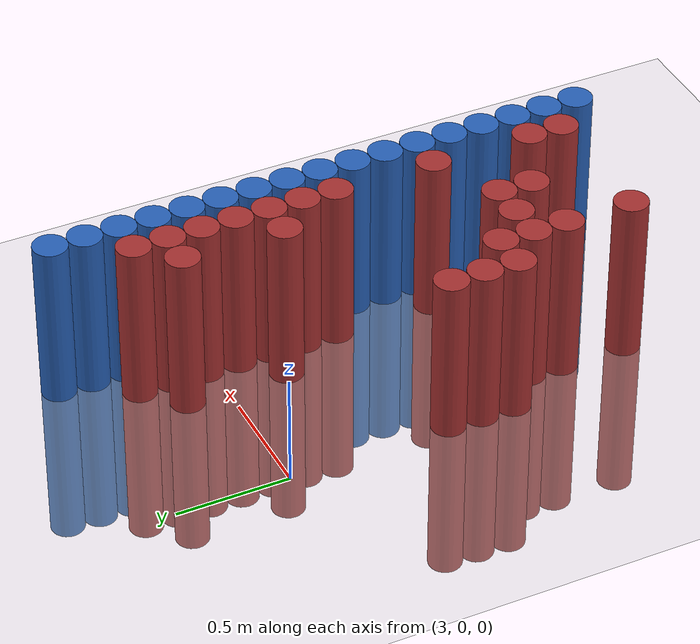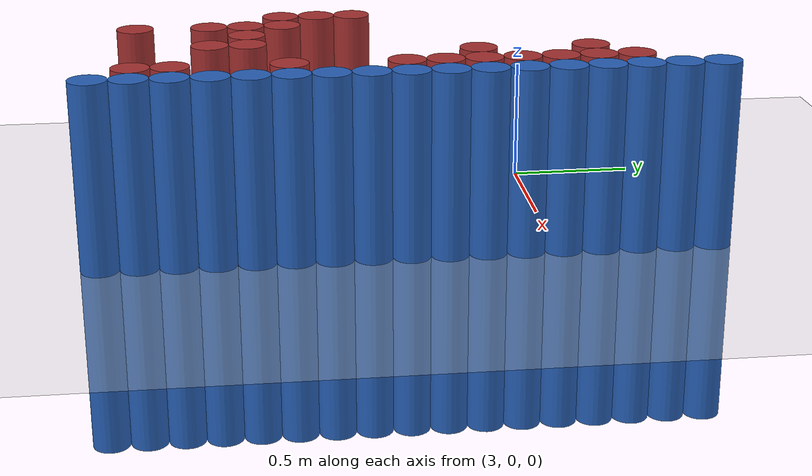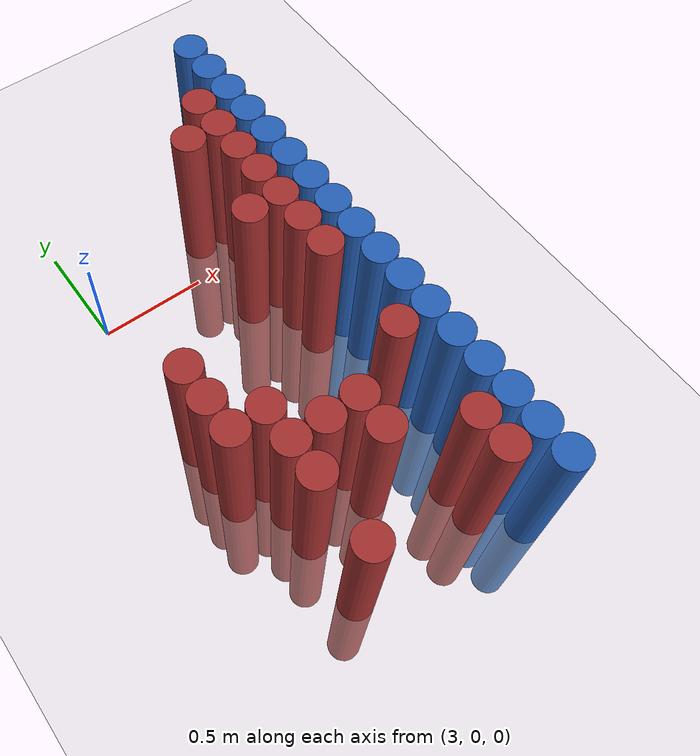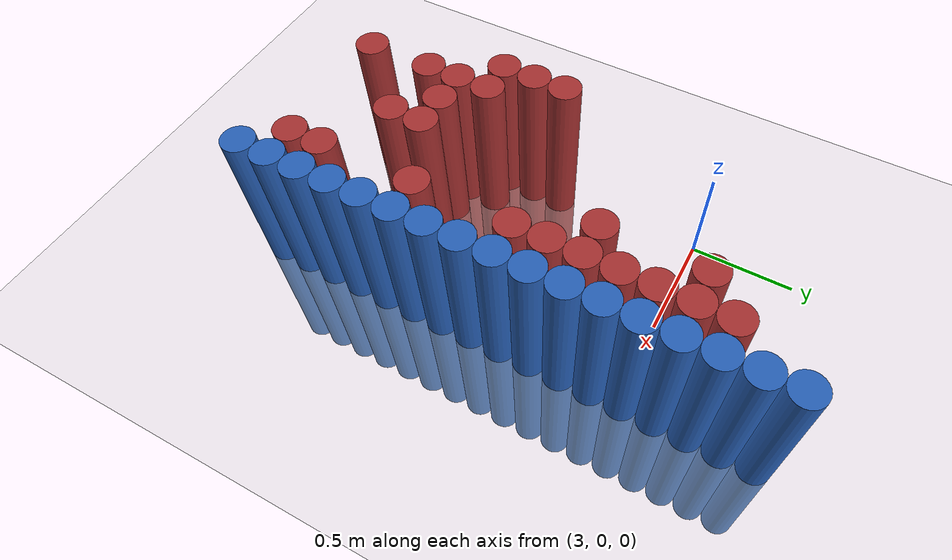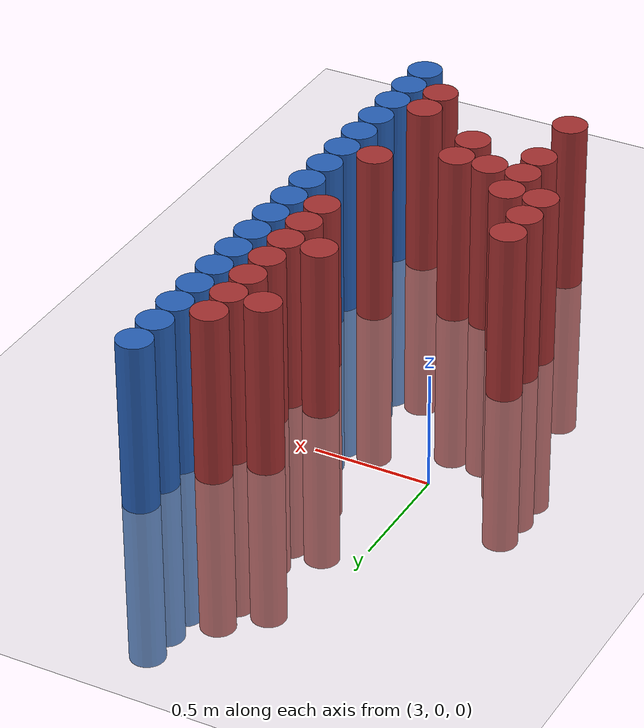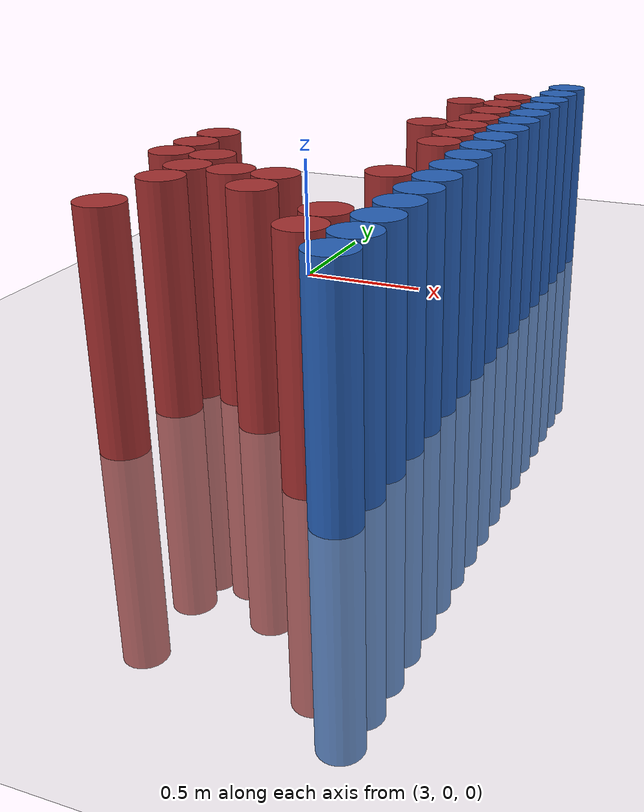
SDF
<sdf version="1.6">
 <world name="default">
  <model name="ground_plane">
   <static>1</static>
   <link name="link">
    <collision name="collision">
     <geometry><plane><normal>0 0 1</normal><size>100 100</size></plane></geometry>
     <surface><friction><ode><mu>100</mu><mu2>50</mu2></ode></friction></surface>
    </collision>
    <visual name="visual">
     <cast_shadows>0</cast_shadows>
     <geometry><plane><normal>0 0 1</normal><size>100 100</size></plane></geometry>
     <material>
      <script><uri>file://media/materials/scripts/gazebo.material</uri><name>Gazebo/Grey</name></script>
     </material>
    </visual>
   </link>
  </model>
  <model name="unit_cylinder_92">
   <static>1</static>
   <pose>3.925000 -1.625000 0.000000 0.000000 0.000000 0.000000</pose>
   <link name="link">
    <inertial>
     <mass>1</mass>
     <inertia><ixx>0.145833</ixx><ixy>0</ixy><ixz>0</ixz><iyy>0.145833</iyy><iyz>0</iyz><izz>0.125</izz></inertia>
    </inertial>
    <collision name="collision">
     <geometry><cylinder><radius>0.075000</radius><length>1.5</length></cylinder></geometry>
    </collision>
    <visual name="visual">
     <geometry><cylinder><radius>0.075000</radius><length>1.5</length></cylinder></geometry>
     <material>
      <ambient>0.152000 0.379000 0.720000 1</ambient>
      <diffuse>0.152000 0.379000 0.720000 1</diffuse>
     </material>
     <material>
      <script><name>Gazebo/Grey</name><uri>file://media/materials/scripts/gazebo.material</uri></script>
     </material>
    </visual>
   </link>
  </model>
  <model name="unit_cylinder_94">
   <static>1</static>
   <pose>3.925000 -1.475000 0.000000 0.000000 0.000000 0.000000</pose>
   <link name="link">
    <inertial>
     <mass>1</mass>
     <inertia><ixx>0.145833</ixx><ixy>0</ixy><ixz>0</ixz><iyy>0.145833</iyy><iyz>0</iyz><izz>0.125</izz></inertia>
    </inertial>
    <collision name="collision">
     <geometry><cylinder><radius>0.075000</radius><length>1.5</length></cylinder></geometry>
    </collision>
    <visual name="visual">
     <geometry><cylinder><radius>0.075000</radius><length>1.5</length></cylinder></geometry>
     <material>
      <ambient>0.152000 0.379000 0.720000 1</ambient>
      <diffuse>0.152000 0.379000 0.720000 1</diffuse>
     </material>
     <material>
      <script><name>Gazebo/Grey</name><uri>file://media/materials/scripts/gazebo.material</uri></script>
     </material>
    </visual>
   </link>
  </model>
  <model name="unit_cylinder_96">
   <static>1</static>
   <pose>3.925000 -1.325000 0.000000 0.000000 0.000000 0.000000</pose>
   <link name="link">
    <inertial>
     <mass>1</mass>
     <inertia><ixx>0.145833</ixx><ixy>0</ixy><ixz>0</ixz><iyy>0.145833</iyy><iyz>0</iyz><izz>0.125</izz></inertia>
    </inertial>
    <collision name="collision">
     <geometry><cylinder><radius>0.075000</radius><length>1.5</length></cylinder></geometry>
    </collision>
    <visual name="visual">
     <geometry><cylinder><radius>0.075000</radius><length>1.5</length></cylinder></geometry>
     <material>
      <ambient>0.152000 0.379000 0.720000 1</ambient>
      <diffuse>0.152000 0.379000 0.720000 1</diffuse>
     </material>
     <material>
      <script><name>Gazebo/Grey</name><uri>file://media/materials/scripts/gazebo.material</uri></script>
     </material>
    </visual>
   </link>
  </model>
  <model name="unit_cylinder_98">
   <static>1</static>
   <pose>3.925000 -1.175000 0.000000 0.000000 0.000000 0.000000</pose>
   <link name="link">
    <inertial>
     <mass>1</mass>
     <inertia><ixx>0.145833</ixx><ixy>0</ixy><ixz>0</ixz><iyy>0.145833</iyy><iyz>0</iyz><izz>0.125</izz></inertia>
    </inertial>
    <collision name="collision">
     <geometry><cylinder><radius>0.075000</radius><length>1.5</length></cylinder></geometry>
    </collision>
    <visual name="visual">
     <geometry><cylinder><radius>0.075000</radius><length>1.5</length></cylinder></geometry>
     <material>
      <ambient>0.152000 0.379000 0.720000 1</ambient>
      <diffuse>0.152000 0.379000 0.720000 1</diffuse>
     </material>
     <material>
      <script><name>Gazebo/Grey</name><uri>file://media/materials/scripts/gazebo.material</uri></script>
     </material>
    </visual>
   </link>
  </model>
  <model name="unit_cylinder_100">
   <static>1</static>
   <pose>3.925000 -1.025000 0.000000 0.000000 0.000000 0.000000</pose>
   <link name="link">
    <inertial>
     <mass>1</mass>
     <inertia><ixx>0.145833</ixx><ixy>0</ixy><ixz>0</ixz><iyy>0.145833</iyy><iyz>0</iyz><izz>0.125</izz></inertia>
    </inertial>
    <collision name="collision">
     <geometry><cylinder><radius>0.075000</radius><length>1.5</length></cylinder></geometry>
    </collision>
    <visual name="visual">
     <geometry><cylinder><radius>0.075000</radius><length>1.5</length></cylinder></geometry>
     <material>
      <ambient>0.152000 0.379000 0.720000 1</ambient>
      <diffuse>0.152000 0.379000 0.720000 1</diffuse>
     </material>
     <material>
      <script><name>Gazebo/Grey</name><uri>file://media/materials/scripts/gazebo.material</uri></script>
     </material>
    </visual>
   </link>
  </model>
  <model name="unit_cylinder_102">
   <static>1</static>
   <pose>3.925000 -0.875000 0.000000 0.000000 0.000000 0.000000</pose>
   <link name="link">
    <inertial>
     <mass>1</mass>
     <inertia><ixx>0.145833</ixx><ixy>0</ixy><ixz>0</ixz><iyy>0.145833</iyy><iyz>0</iyz><izz>0.125</izz></inertia>
    </inertial>
    <collision name="collision">
     <geometry><cylinder><radius>0.075000</radius><length>1.5</length></cylinder></geometry>
    </collision>
    <visual name="visual">
     <geometry><cylinder><radius>0.075000</radius><length>1.5</length></cylinder></geometry>
     <material>
      <ambient>0.152000 0.379000 0.720000 1</ambient>
      <diffuse>0.152000 0.379000 0.720000 1</diffuse>
     </material>
     <material>
      <script><name>Gazebo/Grey</name><uri>file://media/materials/scripts/gazebo.material</uri></script>
     </material>
    </visual>
   </link>
  </model>
  <model name="unit_cylinder_104">
   <static>1</static>
   <pose>3.925000 -0.725000 0.000000 0.000000 0.000000 0.000000</pose>
   <link name="link">
    <inertial>
     <mass>1</mass>
     <inertia><ixx>0.145833</ixx><ixy>0</ixy><ixz>0</ixz><iyy>0.145833</iyy><iyz>0</iyz><izz>0.125</izz></inertia>
    </inertial>
    <collision name="collision">
     <geometry><cylinder><radius>0.075000</radius><length>1.5</length></cylinder></geometry>
    </collision>
    <visual name="visual">
     <geometry><cylinder><radius>0.075000</radius><length>1.5</length></cylinder></geometry>
     <material>
      <ambient>0.152000 0.379000 0.720000 1</ambient>
      <diffuse>0.152000 0.379000 0.720000 1</diffuse>
     </material>
     <material>
      <script><name>Gazebo/Grey</name><uri>file://media/materials/scripts/gazebo.material</uri></script>
     </material>
    </visual>
   </link>
  </model>
  <model name="unit_cylinder_106">
   <static>1</static>
   <pose>3.925000 -0.575000 0.000000 0.000000 0.000000 0.000000</pose>
   <link name="link">
    <inertial>
     <mass>1</mass>
     <inertia><ixx>0.145833</ixx><ixy>0</ixy><ixz>0</ixz><iyy>0.145833</iyy><iyz>0</iyz><izz>0.125</izz></inertia>
    </inertial>
    <collision name="collision">
     <geometry><cylinder><radius>0.075000</radius><length>1.5</length></cylinder></geometry>
    </collision>
    <visual name="visual">
     <geometry><cylinder><radius>0.075000</radius><length>1.5</length></cylinder></geometry>
     <material>
      <ambient>0.152000 0.379000 0.720000 1</ambient>
      <diffuse>0.152000 0.379000 0.720000 1</diffuse>
     </material>
     <material>
      <script><name>Gazebo/Grey</name><uri>file://media/materials/scripts/gazebo.material</uri></script>
     </material>
    </visual>
   </link>
  </model>
  <model name="unit_cylinder_108">
   <static>1</static>
   <pose>3.925000 -0.425000 0.000000 0.000000 0.000000 0.000000</pose>
   <link name="link">
    <inertial>
     <mass>1</mass>
     <inertia><ixx>0.145833</ixx><ixy>0</ixy><ixz>0</ixz><iyy>0.145833</iyy><iyz>0</iyz><izz>0.125</izz></inertia>
    </inertial>
    <collision name="collision">
     <geometry><cylinder><radius>0.075000</radius><length>1.5</length></cylinder></geometry>
    </collision>
    <visual name="visual">
     <geometry><cylinder><radius>0.075000</radius><length>1.5</length></cylinder></geometry>
     <material>
      <ambient>0.152000 0.379000 0.720000 1</ambient>
      <diffuse>0.152000 0.379000 0.720000 1</diffuse>
     </material>
     <material>
      <script><name>Gazebo/Grey</name><uri>file://media/materials/scripts/gazebo.material</uri></script>
     </material>
    </visual>
   </link>
  </model>
  <model name="unit_cylinder_110">
   <static>1</static>
   <pose>3.925000 -0.275000 0.000000 0.000000 0.000000 0.000000</pose>
   <link name="link">
    <inertial>
     <mass>1</mass>
     <inertia><ixx>0.145833</ixx><ixy>0</ixy><ixz>0</ixz><iyy>0.145833</iyy><iyz>0</iyz><izz>0.125</izz></inertia>
    </inertial>
    <collision name="collision">
     <geometry><cylinder><radius>0.075000</radius><length>1.5</length></cylinder></geometry>
    </collision>
    <visual name="visual">
     <geometry><cylinder><radius>0.075000</radius><length>1.5</length></cylinder></geometry>
     <material>
      <ambient>0.152000 0.379000 0.720000 1</ambient>
      <diffuse>0.152000 0.379000 0.720000 1</diffuse>
     </material>
     <material>
      <script><name>Gazebo/Grey</name><uri>file://media/materials/scripts/gazebo.material</uri></script>
     </material>
    </visual>
   </link>
  </model>
  <model name="unit_cylinder_112">
   <static>1</static>
   <pose>3.925000 -0.125000 0.000000 0.000000 0.000000 0.000000</pose>
   <link name="link">
    <inertial>
     <mass>1</mass>
     <inertia><ixx>0.145833</ixx><ixy>0</ixy><ixz>0</ixz><iyy>0.145833</iyy><iyz>0</iyz><izz>0.125</izz></inertia>
    </inertial>
    <collision name="collision">
     <geometry><cylinder><radius>0.075000</radius><length>1.5</length></cylinder></geometry>
    </collision>
    <visual name="visual">
     <geometry><cylinder><radius>0.075000</radius><length>1.5</length></cylinder></geometry>
     <material>
      <ambient>0.152000 0.379000 0.720000 1</ambient>
      <diffuse>0.152000 0.379000 0.720000 1</diffuse>
     </material>
     <material>
      <script><name>Gazebo/Grey</name><uri>file://media/materials/scripts/gazebo.material</uri></script>
     </material>
    </visual>
   </link>
  </model>
  <model name="unit_cylinder_114">
   <static>1</static>
   <pose>3.925000 0.025000 0.000000 0.000000 0.000000 0.000000</pose>
   <link name="link">
    <inertial>
     <mass>1</mass>
     <inertia><ixx>0.145833</ixx><ixy>0</ixy><ixz>0</ixz><iyy>0.145833</iyy><iyz>0</iyz><izz>0.125</izz></inertia>
    </inertial>
    <collision name="collision">
     <geometry><cylinder><radius>0.075000</radius><length>1.5</length></cylinder></geometry>
    </collision>
    <visual name="visual">
     <geometry><cylinder><radius>0.075000</radius><length>1.5</length></cylinder></geometry>
     <material>
      <ambient>0.152000 0.379000 0.720000 1</ambient>
      <diffuse>0.152000 0.379000 0.720000 1</diffuse>
     </material>
     <material>
      <script><name>Gazebo/Grey</name><uri>file://media/materials/scripts/gazebo.material</uri></script>
     </material>
    </visual>
   </link>
  </model>
  <model name="unit_cylinder_116">
   <static>1</static>
   <pose>3.925000 0.175000 0.000000 0.000000 0.000000 0.000000</pose>
   <link name="link">
    <inertial>
     <mass>1</mass>
     <inertia><ixx>0.145833</ixx><ixy>0</ixy><ixz>0</ixz><iyy>0.145833</iyy><iyz>0</iyz><izz>0.125</izz></inertia>
    </inertial>
    <collision name="collision">
     <geometry><cylinder><radius>0.075000</radius><length>1.5</length></cylinder></geometry>
    </collision>
    <visual name="visual">
     <geometry><cylinder><radius>0.075000</radius><length>1.5</length></cylinder></geometry>
     <material>
      <ambient>0.152000 0.379000 0.720000 1</ambient>
      <diffuse>0.152000 0.379000 0.720000 1</diffuse>
     </material>
     <material>
      <script><name>Gazebo/Grey</name><uri>file://media/materials/scripts/gazebo.material</uri></script>
     </material>
    </visual>
   </link>
  </model>
  <model name="unit_cylinder_118">
   <static>1</static>
   <pose>3.925000 0.325000 0.000000 0.000000 0.000000 0.000000</pose>
   <link name="link">
    <inertial>
     <mass>1</mass>
     <inertia><ixx>0.145833</ixx><ixy>0</ixy><ixz>0</ixz><iyy>0.145833</iyy><iyz>0</iyz><izz>0.125</izz></inertia>
    </inertial>
    <collision name="collision">
     <geometry><cylinder><radius>0.075000</radius><length>1.5</length></cylinder></geometry>
    </collision>
    <visual name="visual">
     <geometry><cylinder><radius>0.075000</radius><length>1.5</length></cylinder></geometry>
     <material>
      <ambient>0.152000 0.379000 0.720000 1</ambient>
      <diffuse>0.152000 0.379000 0.720000 1</diffuse>
     </material>
     <material>
      <script><name>Gazebo/Grey</name><uri>file://media/materials/scripts/gazebo.material</uri></script>
     </material>
    </visual>
   </link>
  </model>
  <model name="unit_cylinder_120">
   <static>1</static>
   <pose>3.925000 0.475000 0.000000 0.000000 0.000000 0.000000</pose>
   <link name="link">
    <inertial>
     <mass>1</mass>
     <inertia><ixx>0.145833</ixx><ixy>0</ixy><ixz>0</ixz><iyy>0.145833</iyy><iyz>0</iyz><izz>0.125</izz></inertia>
    </inertial>
    <collision name="collision">
     <geometry><cylinder><radius>0.075000</radius><length>1.5</length></cylinder></geometry>
    </collision>
    <visual name="visual">
     <geometry><cylinder><radius>0.075000</radius><length>1.5</length></cylinder></geometry>
     <material>
      <ambient>0.152000 0.379000 0.720000 1</ambient>
      <diffuse>0.152000 0.379000 0.720000 1</diffuse>
     </material>
     <material>
      <script><name>Gazebo/Grey</name><uri>file://media/materials/scripts/gazebo.material</uri></script>
     </material>
    </visual>
   </link>
  </model>
  <model name="unit_cylinder_122">
   <static>1</static>
   <pose>3.925000 0.625000 0.000000 0.000000 0.000000 0.000000</pose>
   <link name="link">
    <inertial>
     <mass>1</mass>
     <inertia><ixx>0.145833</ixx><ixy>0</ixy><ixz>0</ixz><iyy>0.145833</iyy><iyz>0</iyz><izz>0.125</izz></inertia>
    </inertial>
    <collision name="collision">
     <geometry><cylinder><radius>0.075000</radius><length>1.5</length></cylinder></geometry>
    </collision>
    <visual name="visual">
     <geometry><cylinder><radius>0.075000</radius><length>1.5</length></cylinder></geometry>
     <material>
      <ambient>0.152000 0.379000 0.720000 1</ambient>
      <diffuse>0.152000 0.379000 0.720000 1</diffuse>
     </material>
     <material>
      <script><name>Gazebo/Grey</name><uri>file://media/materials/scripts/gazebo.material</uri></script>
     </material>
    </visual>
   </link>
  </model>
  <model name="unit_cylinder_533">
   <static>1</static>
   <pose>3.025000 -1.025000 0.000000 0.000000 0.000000 0.000000</pose>
   <link name="link">
    <inertial>
     <mass>1</mass>
     <inertia><ixx>0.145833</ixx><ixy>0</ixy><ixz>0</ixz><iyy>0.145833</iyy><iyz>0</iyz><izz>0.125</izz></inertia>
    </inertial>
    <collision name="collision">
     <geometry><cylinder><radius>0.075000</radius><length>1.5</length></cylinder></geometry>
    </collision>
    <visual name="visual">
     <geometry><cylinder><radius>0.075000</radius><length>1.5</length></cylinder></geometry>
     <material>
      <ambient>0.648000 0.192000 0.192000 1</ambient>
      <diffuse>0.648000 0.192000 0.192000 1</diffuse>
     </material>
     <material>
      <script><name>Gazebo/Grey</name><uri>file://media/materials/scripts/gazebo.material</uri></script>
     </material>
    </visual>
   </link>
  </model>
  <model name="unit_cylinder_534">
   <static>1</static>
   <pose>3.025000 -0.875000 0.000000 0.000000 0.000000 0.000000</pose>
   <link name="link">
    <inertial>
     <mass>1</mass>
     <inertia><ixx>0.145833</ixx><ixy>0</ixy><ixz>0</ixz><iyy>0.145833</iyy><iyz>0</iyz><izz>0.125</izz></inertia>
    </inertial>
    <collision name="collision">
     <geometry><cylinder><radius>0.075000</radius><length>1.5</length></cylinder></geometry>
    </collision>
    <visual name="visual">
     <geometry><cylinder><radius>0.075000</radius><length>1.5</length></cylinder></geometry>
     <material>
      <ambient>0.648000 0.192000 0.192000 1</ambient>
      <diffuse>0.648000 0.192000 0.192000 1</diffuse>
     </material>
     <material>
      <script><name>Gazebo/Grey</name><uri>file://media/materials/scripts/gazebo.material</uri></script>
     </material>
    </visual>
   </link>
  </model>
  <model name="unit_cylinder_535">
   <static>1</static>
   <pose>3.025000 -0.725000 0.000000 0.000000 0.000000 0.000000</pose>
   <link name="link">
    <inertial>
     <mass>1</mass>
     <inertia><ixx>0.145833</ixx><ixy>0</ixy><ixz>0</ixz><iyy>0.145833</iyy><iyz>0</iyz><izz>0.125</izz></inertia>
    </inertial>
    <collision name="collision">
     <geometry><cylinder><radius>0.075000</radius><length>1.5</length></cylinder></geometry>
    </collision>
    <visual name="visual">
     <geometry><cylinder><radius>0.075000</radius><length>1.5</length></cylinder></geometry>
     <material>
      <ambient>0.648000 0.192000 0.192000 1</ambient>
      <diffuse>0.648000 0.192000 0.192000 1</diffuse>
     </material>
     <material>
      <script><name>Gazebo/Grey</name><uri>file://media/materials/scripts/gazebo.material</uri></script>
     </material>
    </visual>
   </link>
  </model>
  <model name="unit_cylinder_538">
   <static>1</static>
   <pose>3.175000 -1.625000 0.000000 0.000000 0.000000 0.000000</pose>
   <link name="link">
    <inertial>
     <mass>1</mass>
     <inertia><ixx>0.145833</ixx><ixy>0</ixy><ixz>0</ixz><iyy>0.145833</iyy><iyz>0</iyz><izz>0.125</izz></inertia>
    </inertial>
    <collision name="collision">
     <geometry><cylinder><radius>0.075000</radius><length>1.5</length></cylinder></geometry>
    </collision>
    <visual name="visual">
     <geometry><cylinder><radius>0.075000</radius><length>1.5</length></cylinder></geometry>
     <material>
      <ambient>0.648000 0.192000 0.192000 1</ambient>
      <diffuse>0.648000 0.192000 0.192000 1</diffuse>
     </material>
     <material>
      <script><name>Gazebo/Grey</name><uri>file://media/materials/scripts/gazebo.material</uri></script>
     </material>
    </visual>
   </link>
  </model>
  <model name="unit_cylinder_539">
   <static>1</static>
   <pose>3.175000 -1.325000 0.000000 0.000000 0.000000 0.000000</pose>
   <link name="link">
    <inertial>
     <mass>1</mass>
     <inertia><ixx>0.145833</ixx><ixy>0</ixy><ixz>0</ixz><iyy>0.145833</iyy><iyz>0</iyz><izz>0.125</izz></inertia>
    </inertial>
    <collision name="collision">
     <geometry><cylinder><radius>0.075000</radius><length>1.5</length></cylinder></geometry>
    </collision>
    <visual name="visual">
     <geometry><cylinder><radius>0.075000</radius><length>1.5</length></cylinder></geometry>
     <material>
      <ambient>0.648000 0.192000 0.192000 1</ambient>
      <diffuse>0.648000 0.192000 0.192000 1</diffuse>
     </material>
     <material>
      <script><name>Gazebo/Grey</name><uri>file://media/materials/scripts/gazebo.material</uri></script>
     </material>
    </visual>
   </link>
  </model>
  <model name="unit_cylinder_540">
   <static>1</static>
   <pose>3.175000 -1.175000 0.000000 0.000000 0.000000 0.000000</pose>
   <link name="link">
    <inertial>
     <mass>1</mass>
     <inertia><ixx>0.145833</ixx><ixy>0</ixy><ixz>0</ixz><iyy>0.145833</iyy><iyz>0</iyz><izz>0.125</izz></inertia>
    </inertial>
    <collision name="collision">
     <geometry><cylinder><radius>0.075000</radius><length>1.5</length></cylinder></geometry>
    </collision>
    <visual name="visual">
     <geometry><cylinder><radius>0.075000</radius><length>1.5</length></cylinder></geometry>
     <material>
      <ambient>0.648000 0.192000 0.192000 1</ambient>
      <diffuse>0.648000 0.192000 0.192000 1</diffuse>
     </material>
     <material>
      <script><name>Gazebo/Grey</name><uri>file://media/materials/scripts/gazebo.material</uri></script>
     </material>
    </visual>
   </link>
  </model>
  <model name="unit_cylinder_541">
   <static>1</static>
   <pose>3.175000 -1.025000 0.000000 0.000000 0.000000 0.000000</pose>
   <link name="link">
    <inertial>
     <mass>1</mass>
     <inertia><ixx>0.145833</ixx><ixy>0</ixy><ixz>0</ixz><iyy>0.145833</iyy><iyz>0</iyz><izz>0.125</izz></inertia>
    </inertial>
    <collision name="collision">
     <geometry><cylinder><radius>0.075000</radius><length>1.5</length></cylinder></geometry>
    </collision>
    <visual name="visual">
     <geometry><cylinder><radius>0.075000</radius><length>1.5</length></cylinder></geometry>
     <material>
      <ambient>0.648000 0.192000 0.192000 1</ambient>
      <diffuse>0.648000 0.192000 0.192000 1</diffuse>
     </material>
     <material>
      <script><name>Gazebo/Grey</name><uri>file://media/materials/scripts/gazebo.material</uri></script>
     </material>
    </visual>
   </link>
  </model>
  <model name="unit_cylinder_542">
   <static>1</static>
   <pose>3.325000 -1.175000 0.000000 0.000000 0.000000 0.000000</pose>
   <link name="link">
    <inertial>
     <mass>1</mass>
     <inertia><ixx>0.145833</ixx><ixy>0</ixy><ixz>0</ixz><iyy>0.145833</iyy><iyz>0</iyz><izz>0.125</izz></inertia>
    </inertial>
    <collision name="collision">
     <geometry><cylinder><radius>0.075000</radius><length>1.5</length></cylinder></geometry>
    </collision>
    <visual name="visual">
     <geometry><cylinder><radius>0.075000</radius><length>1.5</length></cylinder></geometry>
     <material>
      <ambient>0.648000 0.192000 0.192000 1</ambient>
      <diffuse>0.648000 0.192000 0.192000 1</diffuse>
     </material>
     <material>
      <script><name>Gazebo/Grey</name><uri>file://media/materials/scripts/gazebo.material</uri></script>
     </material>
    </visual>
   </link>
  </model>
  <model name="unit_cylinder_543">
   <static>1</static>
   <pose>3.475000 -1.325000 0.000000 0.000000 0.000000 0.000000</pose>
   <link name="link">
    <inertial>
     <mass>1</mass>
     <inertia><ixx>0.145833</ixx><ixy>0</ixy><ixz>0</ixz><iyy>0.145833</iyy><iyz>0</iyz><izz>0.125</izz></inertia>
    </inertial>
    <collision name="collision">
     <geometry><cylinder><radius>0.075000</radius><length>1.5</length></cylinder></geometry>
    </collision>
    <visual name="visual">
     <geometry><cylinder><radius>0.075000</radius><length>1.5</length></cylinder></geometry>
     <material>
      <ambient>0.648000 0.192000 0.192000 1</ambient>
      <diffuse>0.648000 0.192000 0.192000 1</diffuse>
     </material>
     <material>
      <script><name>Gazebo/Grey</name><uri>file://media/materials/scripts/gazebo.material</uri></script>
     </material>
    </visual>
   </link>
  </model>
  <model name="unit_cylinder_544">
   <static>1</static>
   <pose>3.475000 -1.175000 0.000000 0.000000 0.000000 0.000000</pose>
   <link name="link">
    <inertial>
     <mass>1</mass>
     <inertia><ixx>0.145833</ixx><ixy>0</ixy><ixz>0</ixz><iyy>0.145833</iyy><iyz>0</iyz><izz>0.125</izz></inertia>
    </inertial>
    <collision name="collision">
     <geometry><cylinder><radius>0.075000</radius><length>1.5</length></cylinder></geometry>
    </collision>
    <visual name="visual">
     <geometry><cylinder><radius>0.075000</radius><length>1.5</length></cylinder></geometry>
     <material>
      <ambient>0.648000 0.192000 0.192000 1</ambient>
      <diffuse>0.648000 0.192000 0.192000 1</diffuse>
     </material>
     <material>
      <script><name>Gazebo/Grey</name><uri>file://media/materials/scripts/gazebo.material</uri></script>
     </material>
    </visual>
   </link>
  </model>
  <model name="unit_cylinder_549">
   <static>1</static>
   <pose>3.625000 -0.275000 0.000000 0.000000 0.000000 0.000000</pose>
   <link name="link">
    <inertial>
     <mass>1</mass>
     <inertia><ixx>0.145833</ixx><ixy>0</ixy><ixz>0</ixz><iyy>0.145833</iyy><iyz>0</iyz><izz>0.125</izz></inertia>
    </inertial>
    <collision name="collision">
     <geometry><cylinder><radius>0.075000</radius><length>1.5</length></cylinder></geometry>
    </collision>
    <visual name="visual">
     <geometry><cylinder><radius>0.075000</radius><length>1.5</length></cylinder></geometry>
     <material>
      <ambient>0.648000 0.192000 0.192000 1</ambient>
      <diffuse>0.648000 0.192000 0.192000 1</diffuse>
     </material>
     <material>
      <script><name>Gazebo/Grey</name><uri>file://media/materials/scripts/gazebo.material</uri></script>
     </material>
    </visual>
   </link>
  </model>
  <model name="unit_cylinder_550">
   <static>1</static>
   <pose>3.625000 0.175000 0.000000 0.000000 0.000000 0.000000</pose>
   <link name="link">
    <inertial>
     <mass>1</mass>
     <inertia><ixx>0.145833</ixx><ixy>0</ixy><ixz>0</ixz><iyy>0.145833</iyy><iyz>0</iyz><izz>0.125</izz></inertia>
    </inertial>
    <collision name="collision">
     <geometry><cylinder><radius>0.075000</radius><length>1.5</length></cylinder></geometry>
    </collision>
    <visual name="visual">
     <geometry><cylinder><radius>0.075000</radius><length>1.5</length></cylinder></geometry>
     <material>
      <ambient>0.648000 0.192000 0.192000 1</ambient>
      <diffuse>0.648000 0.192000 0.192000 1</diffuse>
     </material>
     <material>
      <script><name>Gazebo/Grey</name><uri>file://media/materials/scripts/gazebo.material</uri></script>
     </material>
    </visual>
   </link>
  </model>
  <model name="unit_cylinder_563">
   <static>1</static>
   <pose>3.775000 -1.625000 0.000000 0.000000 0.000000 0.000000</pose>
   <link name="link">
    <inertial>
     <mass>1</mass>
     <inertia><ixx>0.145833</ixx><ixy>0</ixy><ixz>0</ixz><iyy>0.145833</iyy><iyz>0</iyz><izz>0.125</izz></inertia>
    </inertial>
    <collision name="collision">
     <geometry><cylinder><radius>0.075000</radius><length>1.5</length></cylinder></geometry>
    </collision>
    <visual name="visual">
     <geometry><cylinder><radius>0.075000</radius><length>1.5</length></cylinder></geometry>
     <material>
      <ambient>0.648000 0.192000 0.192000 1</ambient>
      <diffuse>0.648000 0.192000 0.192000 1</diffuse>
     </material>
     <material>
      <script><name>Gazebo/Grey</name><uri>file://media/materials/scripts/gazebo.material</uri></script>
     </material>
    </visual>
   </link>
  </model>
  <model name="unit_cylinder_564">
   <static>1</static>
   <pose>3.775000 -1.475000 0.000000 0.000000 0.000000 0.000000</pose>
   <link name="link">
    <inertial>
     <mass>1</mass>
     <inertia><ixx>0.145833</ixx><ixy>0</ixy><ixz>0</ixz><iyy>0.145833</iyy><iyz>0</iyz><izz>0.125</izz></inertia>
    </inertial>
    <collision name="collision">
     <geometry><cylinder><radius>0.075000</radius><length>1.5</length></cylinder></geometry>
    </collision>
    <visual name="visual">
     <geometry><cylinder><radius>0.075000</radius><length>1.5</length></cylinder></geometry>
     <material>
      <ambient>0.648000 0.192000 0.192000 1</ambient>
      <diffuse>0.648000 0.192000 0.192000 1</diffuse>
     </material>
     <material>
      <script><name>Gazebo/Grey</name><uri>file://media/materials/scripts/gazebo.material</uri></script>
     </material>
    </visual>
   </link>
  </model>
  <model name="unit_cylinder_565">
   <static>1</static>
   <pose>3.775000 -1.025000 0.000000 0.000000 0.000000 0.000000</pose>
   <link name="link">
    <inertial>
     <mass>1</mass>
     <inertia><ixx>0.145833</ixx><ixy>0</ixy><ixz>0</ixz><iyy>0.145833</iyy><iyz>0</iyz><izz>0.125</izz></inertia>
    </inertial>
    <collision name="collision">
     <geometry><cylinder><radius>0.075000</radius><length>1.5</length></cylinder></geometry>
    </collision>
    <visual name="visual">
     <geometry><cylinder><radius>0.075000</radius><length>1.5</length></cylinder></geometry>
     <material>
      <ambient>0.648000 0.192000 0.192000 1</ambient>
      <diffuse>0.648000 0.192000 0.192000 1</diffuse>
     </material>
     <material>
      <script><name>Gazebo/Grey</name><uri>file://media/materials/scripts/gazebo.material</uri></script>
     </material>
    </visual>
   </link>
  </model>
  <model name="unit_cylinder_566">
   <static>1</static>
   <pose>3.775000 -0.575000 0.000000 0.000000 0.000000 0.000000</pose>
   <link name="link">
    <inertial>
     <mass>1</mass>
     <inertia><ixx>0.145833</ixx><ixy>0</ixy><ixz>0</ixz><iyy>0.145833</iyy><iyz>0</iyz><izz>0.125</izz></inertia>
    </inertial>
    <collision name="collision">
     <geometry><cylinder><radius>0.075000</radius><length>1.5</length></cylinder></geometry>
    </collision>
    <visual name="visual">
     <geometry><cylinder><radius>0.075000</radius><length>1.5</length></cylinder></geometry>
     <material>
      <ambient>0.648000 0.192000 0.192000 1</ambient>
      <diffuse>0.648000 0.192000 0.192000 1</diffuse>
     </material>
     <material>
      <script><name>Gazebo/Grey</name><uri>file://media/materials/scripts/gazebo.material</uri></script>
     </material>
    </visual>
   </link>
  </model>
  <model name="unit_cylinder_567">
   <static>1</static>
   <pose>3.775000 -0.425000 0.000000 0.000000 0.000000 0.000000</pose>
   <link name="link">
    <inertial>
     <mass>1</mass>
     <inertia><ixx>0.145833</ixx><ixy>0</ixy><ixz>0</ixz><iyy>0.145833</iyy><iyz>0</iyz><izz>0.125</izz></inertia>
    </inertial>
    <collision name="collision">
     <geometry><cylinder><radius>0.075000</radius><length>1.5</length></cylinder></geometry>
    </collision>
    <visual name="visual">
     <geometry><cylinder><radius>0.075000</radius><length>1.5</length></cylinder></geometry>
     <material>
      <ambient>0.648000 0.192000 0.192000 1</ambient>
      <diffuse>0.648000 0.192000 0.192000 1</diffuse>
     </material>
     <material>
      <script><name>Gazebo/Grey</name><uri>file://media/materials/scripts/gazebo.material</uri></script>
     </material>
    </visual>
   </link>
  </model>
  <model name="unit_cylinder_568">
   <static>1</static>
   <pose>3.775000 -0.275000 0.000000 0.000000 0.000000 0.000000</pose>
   <link name="link">
    <inertial>
     <mass>1</mass>
     <inertia><ixx>0.145833</ixx><ixy>0</ixy><ixz>0</ixz><iyy>0.145833</iyy><iyz>0</iyz><izz>0.125</izz></inertia>
    </inertial>
    <collision name="collision">
     <geometry><cylinder><radius>0.075000</radius><length>1.5</length></cylinder></geometry>
    </collision>
    <visual name="visual">
     <geometry><cylinder><radius>0.075000</radius><length>1.5</length></cylinder></geometry>
     <material>
      <ambient>0.648000 0.192000 0.192000 1</ambient>
      <diffuse>0.648000 0.192000 0.192000 1</diffuse>
     </material>
     <material>
      <script><name>Gazebo/Grey</name><uri>file://media/materials/scripts/gazebo.material</uri></script>
     </material>
    </visual>
   </link>
  </model>
  <model name="unit_cylinder_569">
   <static>1</static>
   <pose>3.775000 -0.125000 0.000000 0.000000 0.000000 0.000000</pose>
   <link name="link">
    <inertial>
     <mass>1</mass>
     <inertia><ixx>0.145833</ixx><ixy>0</ixy><ixz>0</ixz><iyy>0.145833</iyy><iyz>0</iyz><izz>0.125</izz></inertia>
    </inertial>
    <collision name="collision">
     <geometry><cylinder><radius>0.075000</radius><length>1.5</length></cylinder></geometry>
    </collision>
    <visual name="visual">
     <geometry><cylinder><radius>0.075000</radius><length>1.5</length></cylinder></geometry>
     <material>
      <ambient>0.648000 0.192000 0.192000 1</ambient>
      <diffuse>0.648000 0.192000 0.192000 1</diffuse>
     </material>
     <material>
      <script><name>Gazebo/Grey</name><uri>file://media/materials/scripts/gazebo.material</uri></script>
     </material>
    </visual>
   </link>
  </model>
  <model name="unit_cylinder_570">
   <static>1</static>
   <pose>3.775000 0.025000 0.000000 0.000000 0.000000 0.000000</pose>
   <link name="link">
    <inertial>
     <mass>1</mass>
     <inertia><ixx>0.145833</ixx><ixy>0</ixy><ixz>0</ixz><iyy>0.145833</iyy><iyz>0</iyz><izz>0.125</izz></inertia>
    </inertial>
    <collision name="collision">
     <geometry><cylinder><radius>0.075000</radius><length>1.5</length></cylinder></geometry>
    </collision>
    <visual name="visual">
     <geometry><cylinder><radius>0.075000</radius><length>1.5</length></cylinder></geometry>
     <material>
      <ambient>0.648000 0.192000 0.192000 1</ambient>
      <diffuse>0.648000 0.192000 0.192000 1</diffuse>
     </material>
     <material>
      <script><name>Gazebo/Grey</name><uri>file://media/materials/scripts/gazebo.material</uri></script>
     </material>
    </visual>
   </link>
  </model>
  <model name="unit_cylinder_571">
   <static>1</static>
   <pose>3.775000 0.175000 0.000000 0.000000 0.000000 0.000000</pose>
   <link name="link">
    <inertial>
     <mass>1</mass>
     <inertia><ixx>0.145833</ixx><ixy>0</ixy><ixz>0</ixz><iyy>0.145833</iyy><iyz>0</iyz><izz>0.125</izz></inertia>
    </inertial>
    <collision name="collision">
     <geometry><cylinder><radius>0.075000</radius><length>1.5</length></cylinder></geometry>
    </collision>
    <visual name="visual">
     <geometry><cylinder><radius>0.075000</radius><length>1.5</length></cylinder></geometry>
     <material>
      <ambient>0.648000 0.192000 0.192000 1</ambient>
      <diffuse>0.648000 0.192000 0.192000 1</diffuse>
     </material>
     <material>
      <script><name>Gazebo/Grey</name><uri>file://media/materials/scripts/gazebo.material</uri></script>
     </material>
    </visual>
   </link>
  </model>
  <model name="unit_cylinder_572">
   <static>1</static>
   <pose>3.775000 0.325000 0.000000 0.000000 0.000000 0.000000</pose>
   <link name="link">
    <inertial>
     <mass>1</mass>
     <inertia><ixx>0.145833</ixx><ixy>0</ixy><ixz>0</ixz><iyy>0.145833</iyy><iyz>0</iyz><izz>0.125</izz></inertia>
    </inertial>
    <collision name="collision">
     <geometry><cylinder><radius>0.075000</radius><length>1.5</length></cylinder></geometry>
    </collision>
    <visual name="visual">
     <geometry><cylinder><radius>0.075000</radius><length>1.5</length></cylinder></geometry>
     <material>
      <ambient>0.648000 0.192000 0.192000 1</ambient>
      <diffuse>0.648000 0.192000 0.192000 1</diffuse>
     </material>
     <material>
      <script><name>Gazebo/Grey</name><uri>file://media/materials/scripts/gazebo.material</uri></script>
     </material>
    </visual>
   </link>
  </model>
  <model name="unit_cylinder_593">
   <static>1</static>
   <pose>3.925000 -1.775000 0.000000 0.000000 0.000000 0.000000</pose>
   <link name="link">
    <inertial>
     <mass>1</mass>
     <inertia><ixx>0.145833</ixx><ixy>0</ixy><ixz>0</ixz><iyy>0.145833</iyy><iyz>0</iyz><izz>0.125</izz></inertia>
    </inertial>
    <collision name="collision">
     <geometry><cylinder><radius>0.075000</radius><length>1.5</length></cylinder></geometry>
    </collision>
    <visual name="visual">
     <geometry><cylinder><radius>0.075000</radius><length>1.5</length></cylinder></geometry>
     <material>
      <ambient>0.152000 0.379000 0.720000 1</ambient>
      <diffuse>0.152000 0.379000 0.720000 1</diffuse>
     </material>
     <material>
      <script><name>Gazebo/Grey</name><uri>file://media/materials/scripts/gazebo.material</uri></script>
     </material>
    </visual>
   </link>
  </model>
  <model name="unit_cylinder_594">
   <static>1</static>
   <pose>3.925000 -1.625000 0.000000 0.000000 0.000000 0.000000</pose>
   <link name="link">
    <inertial>
     <mass>1</mass>
     <inertia><ixx>0.145833</ixx><ixy>0</ixy><ixz>0</ixz><iyy>0.145833</iyy><iyz>0</iyz><izz>0.125</izz></inertia>
    </inertial>
    <collision name="collision">
     <geometry><cylinder><radius>0.075000</radius><length>1.5</length></cylinder></geometry>
    </collision>
    <visual name="visual">
     <geometry><cylinder><radius>0.075000</radius><length>1.5</length></cylinder></geometry>
     <material>
      <ambient>0.152000 0.379000 0.720000 1</ambient>
      <diffuse>0.152000 0.379000 0.720000 1</diffuse>
     </material>
     <material>
      <script><name>Gazebo/Grey</name><uri>file://media/materials/scripts/gazebo.material</uri></script>
     </material>
    </visual>
   </link>
  </model>
  <model name="unit_cylinder_595">
   <static>1</static>
   <pose>3.925000 -1.475000 0.000000 0.000000 0.000000 0.000000</pose>
   <link name="link">
    <inertial>
     <mass>1</mass>
     <inertia><ixx>0.145833</ixx><ixy>0</ixy><ixz>0</ixz><iyy>0.145833</iyy><iyz>0</iyz><izz>0.125</izz></inertia>
    </inertial>
    <collision name="collision">
     <geometry><cylinder><radius>0.075000</radius><length>1.5</length></cylinder></geometry>
    </collision>
    <visual name="visual">
     <geometry><cylinder><radius>0.075000</radius><length>1.5</length></cylinder></geometry>
     <material>
      <ambient>0.152000 0.379000 0.720000 1</ambient>
      <diffuse>0.152000 0.379000 0.720000 1</diffuse>
     </material>
     <material>
      <script><name>Gazebo/Grey</name><uri>file://media/materials/scripts/gazebo.material</uri></script>
     </material>
    </visual>
   </link>
  </model>
  <model name="unit_cylinder_596">
   <static>1</static>
   <pose>3.925000 -1.325000 0.000000 0.000000 0.000000 0.000000</pose>
   <link name="link">
    <inertial>
     <mass>1</mass>
     <inertia><ixx>0.145833</ixx><ixy>0</ixy><ixz>0</ixz><iyy>0.145833</iyy><iyz>0</iyz><izz>0.125</izz></inertia>
    </inertial>
    <collision name="collision">
     <geometry><cylinder><radius>0.075000</radius><length>1.5</length></cylinder></geometry>
    </collision>
    <visual name="visual">
     <geometry><cylinder><radius>0.075000</radius><length>1.5</length></cylinder></geometry>
     <material>
      <ambient>0.152000 0.379000 0.720000 1</ambient>
      <diffuse>0.152000 0.379000 0.720000 1</diffuse>
     </material>
     <material>
      <script><name>Gazebo/Grey</name><uri>file://media/materials/scripts/gazebo.material</uri></script>
     </material>
    </visual>
   </link>
  </model>
  <model name="unit_cylinder_597">
   <static>1</static>
   <pose>3.925000 -1.175000 0.000000 0.000000 0.000000 0.000000</pose>
   <link name="link">
    <inertial>
     <mass>1</mass>
     <inertia><ixx>0.145833</ixx><ixy>0</ixy><ixz>0</ixz><iyy>0.145833</iyy><iyz>0</iyz><izz>0.125</izz></inertia>
    </inertial>
    <collision name="collision">
     <geometry><cylinder><radius>0.075000</radius><length>1.5</length></cylinder></geometry>
    </collision>
    <visual name="visual">
     <geometry><cylinder><radius>0.075000</radius><length>1.5</length></cylinder></geometry>
     <material>
      <ambient>0.152000 0.379000 0.720000 1</ambient>
      <diffuse>0.152000 0.379000 0.720000 1</diffuse>
     </material>
     <material>
      <script><name>Gazebo/Grey</name><uri>file://media/materials/scripts/gazebo.material</uri></script>
     </material>
    </visual>
   </link>
  </model>
  <model name="unit_cylinder_598">
   <static>1</static>
   <pose>3.925000 -1.025000 0.000000 0.000000 0.000000 0.000000</pose>
   <link name="link">
    <inertial>
     <mass>1</mass>
     <inertia><ixx>0.145833</ixx><ixy>0</ixy><ixz>0</ixz><iyy>0.145833</iyy><iyz>0</iyz><izz>0.125</izz></inertia>
    </inertial>
    <collision name="collision">
     <geometry><cylinder><radius>0.075000</radius><length>1.5</length></cylinder></geometry>
    </collision>
    <visual name="visual">
     <geometry><cylinder><radius>0.075000</radius><length>1.5</length></cylinder></geometry>
     <material>
      <ambient>0.152000 0.379000 0.720000 1</ambient>
      <diffuse>0.152000 0.379000 0.720000 1</diffuse>
     </material>
     <material>
      <script><name>Gazebo/Grey</name><uri>file://media/materials/scripts/gazebo.material</uri></script>
     </material>
    </visual>
   </link>
  </model>
  <model name="unit_cylinder_599">
   <static>1</static>
   <pose>3.925000 -0.875000 0.000000 0.000000 0.000000 0.000000</pose>
   <link name="link">
    <inertial>
     <mass>1</mass>
     <inertia><ixx>0.145833</ixx><ixy>0</ixy><ixz>0</ixz><iyy>0.145833</iyy><iyz>0</iyz><izz>0.125</izz></inertia>
    </inertial>
    <collision name="collision">
     <geometry><cylinder><radius>0.075000</radius><length>1.5</length></cylinder></geometry>
    </collision>
    <visual name="visual">
     <geometry><cylinder><radius>0.075000</radius><length>1.5</length></cylinder></geometry>
     <material>
      <ambient>0.152000 0.379000 0.720000 1</ambient>
      <diffuse>0.152000 0.379000 0.720000 1</diffuse>
     </material>
     <material>
      <script><name>Gazebo/Grey</name><uri>file://media/materials/scripts/gazebo.material</uri></script>
     </material>
    </visual>
   </link>
  </model>
  <model name="unit_cylinder_600">
   <static>1</static>
   <pose>3.925000 -0.725000 0.000000 0.000000 0.000000 0.000000</pose>
   <link name="link">
    <inertial>
     <mass>1</mass>
     <inertia><ixx>0.145833</ixx><ixy>0</ixy><ixz>0</ixz><iyy>0.145833</iyy><iyz>0</iyz><izz>0.125</izz></inertia>
    </inertial>
    <collision name="collision">
     <geometry><cylinder><radius>0.075000</radius><length>1.5</length></cylinder></geometry>
    </collision>
    <visual name="visual">
     <geometry><cylinder><radius>0.075000</radius><length>1.5</length></cylinder></geometry>
     <material>
      <ambient>0.152000 0.379000 0.720000 1</ambient>
      <diffuse>0.152000 0.379000 0.720000 1</diffuse>
     </material>
     <material>
      <script><name>Gazebo/Grey</name><uri>file://media/materials/scripts/gazebo.material</uri></script>
     </material>
    </visual>
   </link>
  </model>
  <model name="unit_cylinder_601">
   <static>1</static>
   <pose>3.925000 -0.575000 0.000000 0.000000 0.000000 0.000000</pose>
   <link name="link">
    <inertial>
     <mass>1</mass>
     <inertia><ixx>0.145833</ixx><ixy>0</ixy><ixz>0</ixz><iyy>0.145833</iyy><iyz>0</iyz><izz>0.125</izz></inertia>
    </inertial>
    <collision name="collision">
     <geometry><cylinder><radius>0.075000</radius><length>1.5</length></cylinder></geometry>
    </collision>
    <visual name="visual">
     <geometry><cylinder><radius>0.075000</radius><length>1.5</length></cylinder></geometry>
     <material>
      <ambient>0.152000 0.379000 0.720000 1</ambient>
      <diffuse>0.152000 0.379000 0.720000 1</diffuse>
     </material>
     <material>
      <script><name>Gazebo/Grey</name><uri>file://media/materials/scripts/gazebo.material</uri></script>
     </material>
    </visual>
   </link>
  </model>
  <model name="unit_cylinder_602">
   <static>1</static>
   <pose>3.925000 -0.425000 0.000000 0.000000 0.000000 0.000000</pose>
   <link name="link">
    <inertial>
     <mass>1</mass>
     <inertia><ixx>0.145833</ixx><ixy>0</ixy><ixz>0</ixz><iyy>0.145833</iyy><iyz>0</iyz><izz>0.125</izz></inertia>
    </inertial>
    <collision name="collision">
     <geometry><cylinder><radius>0.075000</radius><length>1.5</length></cylinder></geometry>
    </collision>
    <visual name="visual">
     <geometry><cylinder><radius>0.075000</radius><length>1.5</length></cylinder></geometry>
     <material>
      <ambient>0.152000 0.379000 0.720000 1</ambient>
      <diffuse>0.152000 0.379000 0.720000 1</diffuse>
     </material>
     <material>
      <script><name>Gazebo/Grey</name><uri>file://media/materials/scripts/gazebo.material</uri></script>
     </material>
    </visual>
   </link>
  </model>
  <model name="unit_cylinder_603">
   <static>1</static>
   <pose>3.925000 -0.275000 0.000000 0.000000 0.000000 0.000000</pose>
   <link name="link">
    <inertial>
     <mass>1</mass>
     <inertia><ixx>0.145833</ixx><ixy>0</ixy><ixz>0</ixz><iyy>0.145833</iyy><iyz>0</iyz><izz>0.125</izz></inertia>
    </inertial>
    <collision name="collision">
     <geometry><cylinder><radius>0.075000</radius><length>1.5</length></cylinder></geometry>
    </collision>
    <visual name="visual">
     <geometry><cylinder><radius>0.075000</radius><length>1.5</length></cylinder></geometry>
     <material>
      <ambient>0.152000 0.379000 0.720000 1</ambient>
      <diffuse>0.152000 0.379000 0.720000 1</diffuse>
     </material>
     <material>
      <script><name>Gazebo/Grey</name><uri>file://media/materials/scripts/gazebo.material</uri></script>
     </material>
    </visual>
   </link>
  </model>
  <model name="unit_cylinder_604">
   <static>1</static>
   <pose>3.925000 -0.125000 0.000000 0.000000 0.000000 0.000000</pose>
   <link name="link">
    <inertial>
     <mass>1</mass>
     <inertia><ixx>0.145833</ixx><ixy>0</ixy><ixz>0</ixz><iyy>0.145833</iyy><iyz>0</iyz><izz>0.125</izz></inertia>
    </inertial>
    <collision name="collision">
     <geometry><cylinder><radius>0.075000</radius><length>1.5</length></cylinder></geometry>
    </collision>
    <visual name="visual">
     <geometry><cylinder><radius>0.075000</radius><length>1.5</length></cylinder></geometry>
     <material>
      <ambient>0.152000 0.379000 0.720000 1</ambient>
      <diffuse>0.152000 0.379000 0.720000 1</diffuse>
     </material>
     <material>
      <script><name>Gazebo/Grey</name><uri>file://media/materials/scripts/gazebo.material</uri></script>
     </material>
    </visual>
   </link>
  </model>
  <model name="unit_cylinder_605">
   <static>1</static>
   <pose>3.925000 0.025000 0.000000 0.000000 0.000000 0.000000</pose>
   <link name="link">
    <inertial>
     <mass>1</mass>
     <inertia><ixx>0.145833</ixx><ixy>0</ixy><ixz>0</ixz><iyy>0.145833</iyy><iyz>0</iyz><izz>0.125</izz></inertia>
    </inertial>
    <collision name="collision">
     <geometry><cylinder><radius>0.075000</radius><length>1.5</length></cylinder></geometry>
    </collision>
    <visual name="visual">
     <geometry><cylinder><radius>0.075000</radius><length>1.5</length></cylinder></geometry>
     <material>
      <ambient>0.152000 0.379000 0.720000 1</ambient>
      <diffuse>0.152000 0.379000 0.720000 1</diffuse>
     </material>
     <material>
      <script><name>Gazebo/Grey</name><uri>file://media/materials/scripts/gazebo.material</uri></script>
     </material>
    </visual>
   </link>
  </model>
  <model name="unit_cylinder_606">
   <static>1</static>
   <pose>3.925000 0.175000 0.000000 0.000000 0.000000 0.000000</pose>
   <link name="link">
    <inertial>
     <mass>1</mass>
     <inertia><ixx>0.145833</ixx><ixy>0</ixy><ixz>0</ixz><iyy>0.145833</iyy><iyz>0</iyz><izz>0.125</izz></inertia>
    </inertial>
    <collision name="collision">
     <geometry><cylinder><radius>0.075000</radius><length>1.5</length></cylinder></geometry>
    </collision>
    <visual name="visual">
     <geometry><cylinder><radius>0.075000</radius><length>1.5</length></cylinder></geometry>
     <material>
      <ambient>0.152000 0.379000 0.720000 1</ambient>
      <diffuse>0.152000 0.379000 0.720000 1</diffuse>
     </material>
     <material>
      <script><name>Gazebo/Grey</name><uri>file://media/materials/scripts/gazebo.material</uri></script>
     </material>
    </visual>
   </link>
  </model>
  <model name="unit_cylinder_607">
   <static>1</static>
   <pose>3.925000 0.325000 0.000000 0.000000 0.000000 0.000000</pose>
   <link name="link">
    <inertial>
     <mass>1</mass>
     <inertia><ixx>0.145833</ixx><ixy>0</ixy><ixz>0</ixz><iyy>0.145833</iyy><iyz>0</iyz><izz>0.125</izz></inertia>
    </inertial>
    <collision name="collision">
     <geometry><cylinder><radius>0.075000</radius><length>1.5</length></cylinder></geometry>
    </collision>
    <visual name="visual">
     <geometry><cylinder><radius>0.075000</radius><length>1.5</length></cylinder></geometry>
     <material>
      <ambient>0.152000 0.379000 0.720000 1</ambient>
      <diffuse>0.152000 0.379000 0.720000 1</diffuse>
     </material>
     <material>
      <script><name>Gazebo/Grey</name><uri>file://media/materials/scripts/gazebo.material</uri></script>
     </material>
    </visual>
   </link>
  </model>
  <model name="unit_cylinder_608">
   <static>1</static>
   <pose>3.925000 0.475000 0.000000 0.000000 0.000000 0.000000</pose>
   <link name="link">
    <inertial>
     <mass>1</mass>
     <inertia><ixx>0.145833</ixx><ixy>0</ixy><ixz>0</ixz><iyy>0.145833</iyy><iyz>0</iyz><izz>0.125</izz></inertia>
    </inertial>
    <collision name="collision">
     <geometry><cylinder><radius>0.075000</radius><length>1.5</length></cylinder></geometry>
    </collision>
    <visual name="visual">
     <geometry><cylinder><radius>0.075000</radius><length>1.5</length></cylinder></geometry>
     <material>
      <ambient>0.152000 0.379000 0.720000 1</ambient>
      <diffuse>0.152000 0.379000 0.720000 1</diffuse>
     </material>
     <material>
      <script><name>Gazebo/Grey</name><uri>file://media/materials/scripts/gazebo.material</uri></script>
     </material>
    </visual>
   </link>
  </model>
 </world>
</sdf>
